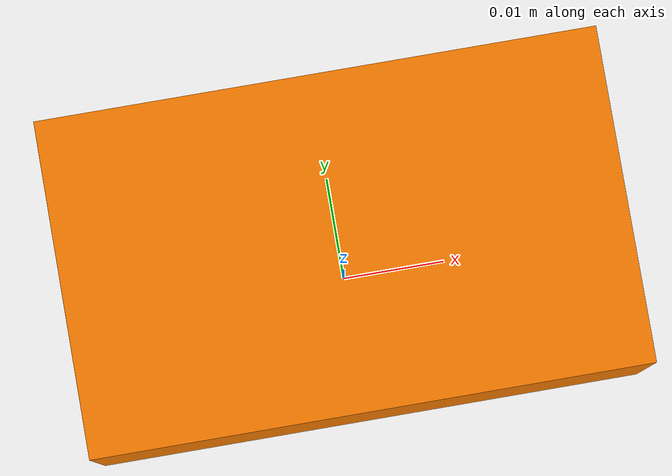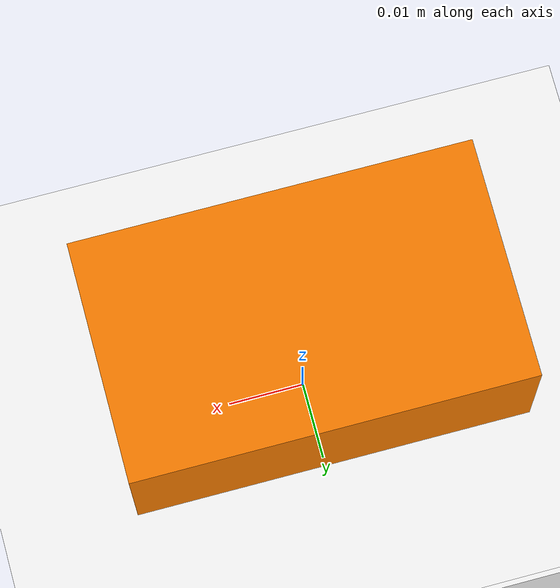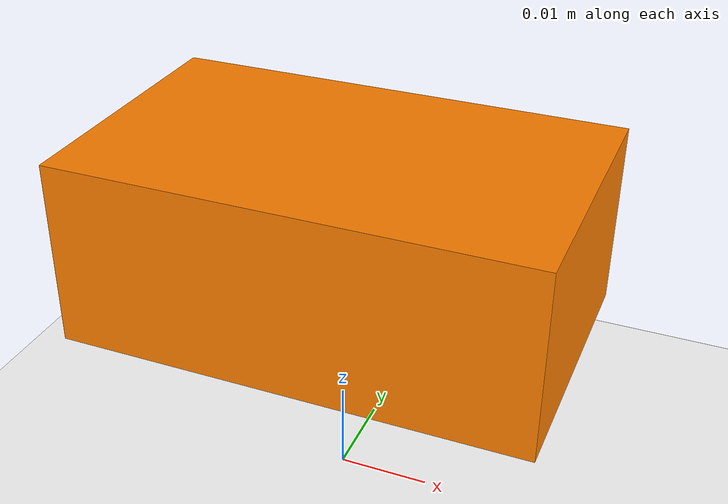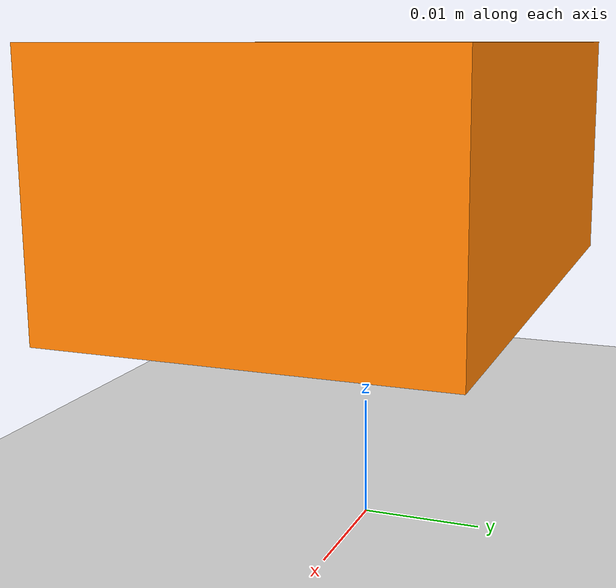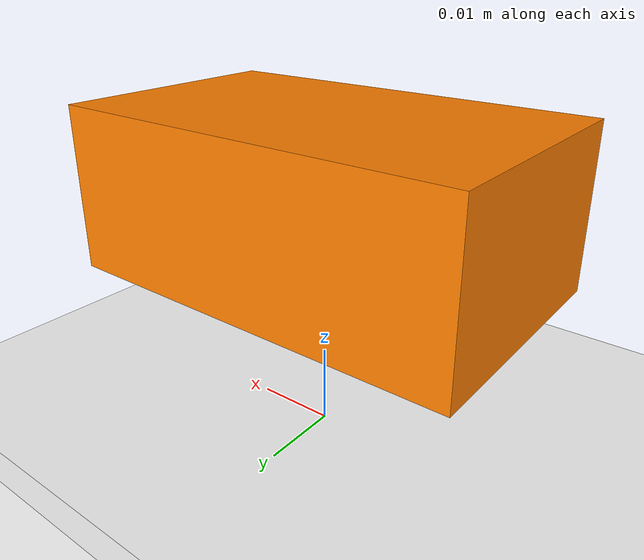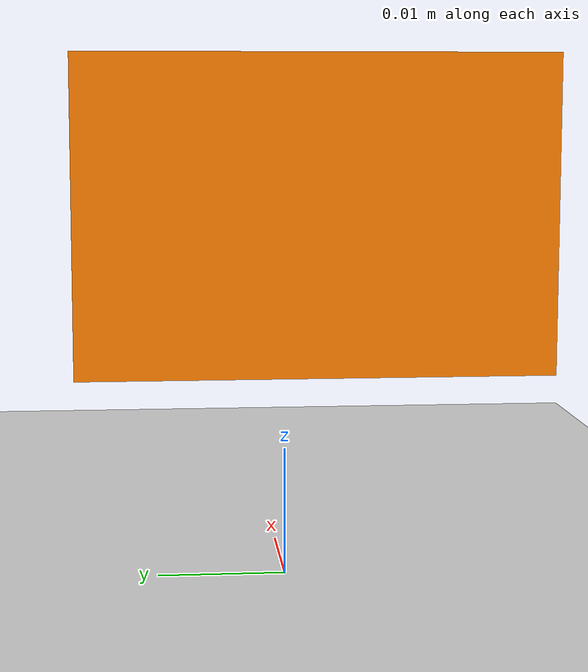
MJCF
<mujoco model="object_tracker">
  <option timestep="0.01"/>

  <asset>
    <texture name="board_tex" type="2d" file="aruco_gridboard.png"/>
    <material name="board_mat" texture="board_tex" texuniform="true"/>

    <texture name="table_tex" type="2d" builtin="flat" rgb1="0.7 0.7 0.7" width="32" height="32"/>
    <material name="table_mat" texture="table_tex"/>
  </asset>

  <visual>
    <headlight diffuse="0.8 0.8 0.8" ambient="0.4 0.4 0.4" specular="0.1 0.1 0.1"/>
  </visual>

  <worldbody>
    <light pos="0 0 1.5" dir="0 0 -1"/>

    <!-- ArUco board: world origin is board center, board lies in z=0 plane -->
    <geom
      name="aruco_board"
      type="plane"
      pos="0 0 0.005"
      size="0.082 0.082 0.005"
      material="board_mat"
      rgba="1 1 1 1"/>

    <!-- Table underneath the board -->
    <geom
      name="table"
      type="box"
      pos="0 0 -0.02"
      size="0.4 0.4 0.02"
      material="table_mat"
      rgba="1 1 1 1"/>

    <body name="tracked_object" pos="0 0 0.03">
      <freejoint/>
      <geom name="tracked_object_geom" type="box" size="0.025 0.015 0.01" rgba="1 0.5 0 1"/>
    </body>
  </worldbody>
</mujoco>
